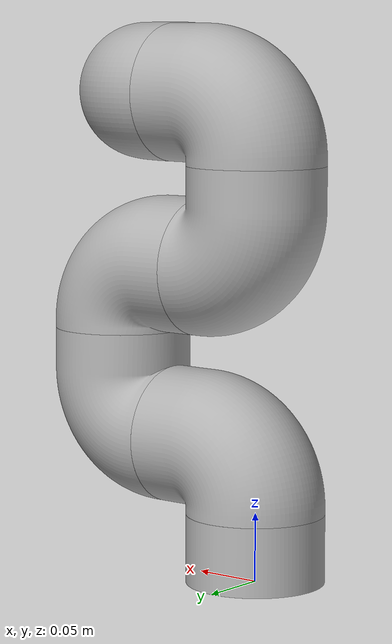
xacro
<?xml version="1.0" ?>
<robot name="a" xmlns:xacro="http://www.ros.org/wiki/xacro">

<xacro:include filename="$(find a_description)/urdf/materials.xacro" />
<xacro:include filename="$(find a_description)/urdf/a.trans" />
<xacro:include filename="$(find a_description)/urdf/a.gazebo" />
<link name="base_link">
  <inertial>
    <origin xyz="-1.1580046200244058e-17 5.790023100122029e-18 0.024999999999999994" rpy="0 0 0"/>
    <mass value="3.082687791334984"/>
    <inertia ixx="0.002569" iyy="0.002569" izz="0.003853" ixy="-0.0" iyz="-0.0" ixz="-0.0"/>
  </inertial>
  <visual>
    <origin xyz="0 0 0" rpy="0 0 0"/>
    <geometry>
      <mesh filename="package://a_description/meshes/base_link.stl" scale="0.001 0.001 0.001"/>
    </geometry>
    <material name="silver"/>
  </visual>
  <collision>
    <origin xyz="0 0 0" rpy="0 0 0"/>
    <geometry>
      <mesh filename="package://a_description/meshes/base_link.stl" scale="0.001 0.001 0.001"/>
    </geometry>
  </collision>
</link>

<link name="link_1_1">
  <inertial>
    <origin xyz="0.022050626905754808 -1.0958717841084449e-17 0.04273601239650884" rpy="0 0 0"/>
    <mass value="6.514934969993694"/>
    <inertia ixx="0.008197" iyy="0.010564" izz="0.010511" ixy="0.0" iyz="0.0" ixz="-0.001515"/>
  </inertial>
  <visual>
    <origin xyz="-0.0 -0.0 -0.05" rpy="0 0 0"/>
    <geometry>
      <mesh filename="package://a_description/meshes/link_1_1.stl" scale="0.001 0.001 0.001"/>
    </geometry>
    <material name="silver"/>
  </visual>
  <collision>
    <origin xyz="-0.0 -0.0 -0.05" rpy="0 0 0"/>
    <geometry>
      <mesh filename="package://a_description/meshes/link_1_1.stl" scale="0.001 0.001 0.001"/>
    </geometry>
  </collision>
</link>

<link name="link_2_1">
  <inertial>
    <origin xyz="0.04273601239650886 -2.1917435682168898e-17 0.022050626905754767" rpy="0 0 0"/>
    <mass value="6.514934969993694"/>
    <inertia ixx="0.010511" iyy="0.010564" izz="0.008197" ixy="-0.0" iyz="-0.0" ixz="-0.001515"/>
  </inertial>
  <visual>
    <origin xyz="-0.075 0.0 -0.1" rpy="0 0 0"/>
    <geometry>
      <mesh filename="package://a_description/meshes/link_2_1.stl" scale="0.001 0.001 0.001"/>
    </geometry>
    <material name="silver"/>
  </visual>
  <collision>
    <origin xyz="-0.075 0.0 -0.1" rpy="0 0 0"/>
    <geometry>
      <mesh filename="package://a_description/meshes/link_2_1.stl" scale="0.001 0.001 0.001"/>
    </geometry>
  </collision>
</link>

<link name="link_3_1">
  <inertial>
    <origin xyz="-0.022050626905754725 -4.3834871364337795e-17 0.04273601239650898" rpy="0 0 0"/>
    <mass value="6.514934969993694"/>
    <inertia ixx="0.008197" iyy="0.010564" izz="0.010511" ixy="0.0" iyz="-0.0" ixz="0.001515"/>
  </inertial>
  <visual>
    <origin xyz="-0.125 -0.0 -0.175" rpy="0 0 0"/>
    <geometry>
      <mesh filename="package://a_description/meshes/link_3_1.stl" scale="0.001 0.001 0.001"/>
    </geometry>
    <material name="silver"/>
  </visual>
  <collision>
    <origin xyz="-0.125 -0.0 -0.175" rpy="0 0 0"/>
    <geometry>
      <mesh filename="package://a_description/meshes/link_3_1.stl" scale="0.001 0.001 0.001"/>
    </geometry>
  </collision>
</link>

<link name="link_4_1">
  <inertial>
    <origin xyz="-0.04273601239650869 4.71224867166631e-16 0.02205062690575471" rpy="0 0 0"/>
    <mass value="6.514934969993697"/>
    <inertia ixx="0.010511" iyy="0.010564" izz="0.008197" ixy="-0.0" iyz="-0.0" ixz="0.001515"/>
  </inertial>
  <visual>
    <origin xyz="-0.05 -0.0 -0.225" rpy="0 0 0"/>
    <geometry>
      <mesh filename="package://a_description/meshes/link_4_1.stl" scale="0.001 0.001 0.001"/>
    </geometry>
    <material name="silver"/>
  </visual>
  <collision>
    <origin xyz="-0.05 -0.0 -0.225" rpy="0 0 0"/>
    <geometry>
      <mesh filename="package://a_description/meshes/link_4_1.stl" scale="0.001 0.001 0.001"/>
    </geometry>
  </collision>
</link>

<link name="link_5_1">
  <inertial>
    <origin xyz="0.02205062690575503 4.931423028487994e-16 0.04273601239650865" rpy="0 0 0"/>
    <mass value="6.5149349699937025"/>
    <inertia ixx="0.008197" iyy="0.010564" izz="0.010511" ixy="-0.0" iyz="-0.0" ixz="-0.001515"/>
  </inertial>
  <visual>
    <origin xyz="-0.0 -0.0 -0.3" rpy="0 0 0"/>
    <geometry>
      <mesh filename="package://a_description/meshes/link_5_1.stl" scale="0.001 0.001 0.001"/>
    </geometry>
    <material name="silver"/>
  </visual>
  <collision>
    <origin xyz="-0.0 -0.0 -0.3" rpy="0 0 0"/>
    <geometry>
      <mesh filename="package://a_description/meshes/link_5_1.stl" scale="0.001 0.001 0.001"/>
    </geometry>
  </collision>
</link>

<link name="link_6_1">
  <inertial>
    <origin xyz="0.04447793785209257 -0.039242672944560957 -0.0003623614965618249" rpy="0 0 0"/>
    <mass value="8.570060530218305"/>
    <inertia ixx="0.019875" iyy="0.010336" izz="0.020009" ixy="0.002329" iyz="-8.9e-05" ixz="2.2e-05"/>
  </inertial>
  <visual>
    <origin xyz="-0.075 -0.0 -0.35" rpy="0 0 0"/>
    <geometry>
      <mesh filename="package://a_description/meshes/link_6_1.stl" scale="0.001 0.001 0.001"/>
    </geometry>
    <material name="silver"/>
  </visual>
  <collision>
    <origin xyz="-0.075 -0.0 -0.35" rpy="0 0 0"/>
    <geometry>
      <mesh filename="package://a_description/meshes/link_6_1.stl" scale="0.001 0.001 0.001"/>
    </geometry>
  </collision>
</link>

<joint name="Revolute 18" type="continuous">
  <origin xyz="0.0 0.0 0.05" rpy="0 0 0"/>
  <parent link="base_link"/>
  <child link="link_1_1"/>
  <axis xyz="0.0 0.0 1.0"/>
</joint>

<joint name="Revolute 19" type="continuous">
  <origin xyz="0.075 -0.0 0.05" rpy="0 0 0"/>
  <parent link="link_1_1"/>
  <child link="link_2_1"/>
  <axis xyz="1.0 0.0 0.0"/>
</joint>

<joint name="Revolute 20" type="continuous">
  <origin xyz="0.05 0.0 0.075" rpy="0 0 0"/>
  <parent link="link_2_1"/>
  <child link="link_3_1"/>
  <axis xyz="0.0 0.0 1.0"/>
</joint>

<joint name="Revolute 21" type="continuous">
  <origin xyz="-0.075 0.0 0.05" rpy="0 0 0"/>
  <parent link="link_3_1"/>
  <child link="link_4_1"/>
  <axis xyz="-1.0 0.0 0.0"/>
</joint>

<joint name="Revolute 22" type="continuous">
  <origin xyz="-0.05 0.0 0.075" rpy="0 0 0"/>
  <parent link="link_4_1"/>
  <child link="link_5_1"/>
  <axis xyz="0.0 0.0 1.0"/>
</joint>

<joint name="Revolute 23" type="continuous">
  <origin xyz="0.075 0.0 0.05" rpy="0 0 0"/>
  <parent link="link_5_1"/>
  <child link="link_6_1"/>
  <axis xyz="1.0 0.0 0.0"/>
</joint>

</robot>

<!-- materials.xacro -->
<robot name="a" xmlns:xacro="http://www.ros.org/wiki/xacro" >

<material name="silver">
  <color rgba="0.700 0.700 0.700 1.000"/>
</material>

</robot>

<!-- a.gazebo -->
<robot name="a" xmlns:xacro="http://www.ros.org/wiki/xacro" >

<xacro:property name="body_color" value="Gazebo/Silver" />

<gazebo>
  <plugin name="control" filename="libgazebo_ros_control.so"/>
</gazebo>
<gazebo reference="base_link">
  <material>${body_color}</material>
  <mu1>0.2</mu1>
  <mu2>0.2</mu2>
  <selfCollide>true</selfCollide>
  <gravity>true</gravity>
</gazebo>

<gazebo reference="link_1_1">
  <material>${body_color}</material>
  <mu1>0.2</mu1>
  <mu2>0.2</mu2>
  <selfCollide>true</selfCollide>
</gazebo>

<gazebo reference="link_2_1">
  <material>${body_color}</material>
  <mu1>0.2</mu1>
  <mu2>0.2</mu2>
  <selfCollide>true</selfCollide>
</gazebo>

<gazebo reference="link_3_1">
  <material>${body_color}</material>
  <mu1>0.2</mu1>
  <mu2>0.2</mu2>
  <selfCollide>true</selfCollide>
</gazebo>

<gazebo reference="link_4_1">
  <material>${body_color}</material>
  <mu1>0.2</mu1>
  <mu2>0.2</mu2>
  <selfCollide>true</selfCollide>
</gazebo>

<gazebo reference="link_5_1">
  <material>${body_color}</material>
  <mu1>0.2</mu1>
  <mu2>0.2</mu2>
  <selfCollide>true</selfCollide>
</gazebo>

<gazebo reference="link_6_1">
  <material>${body_color}</material>
  <mu1>0.2</mu1>
  <mu2>0.2</mu2>
  <selfCollide>true</selfCollide>
</gazebo>

</robot>
